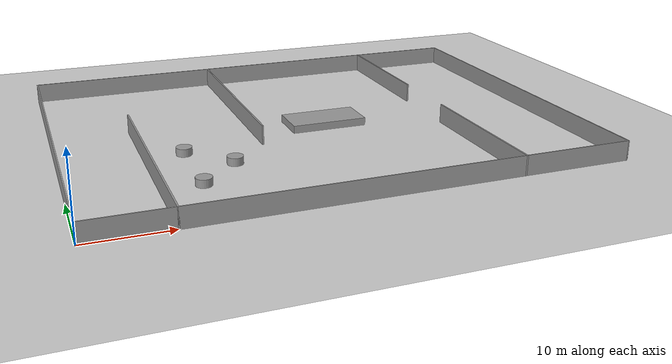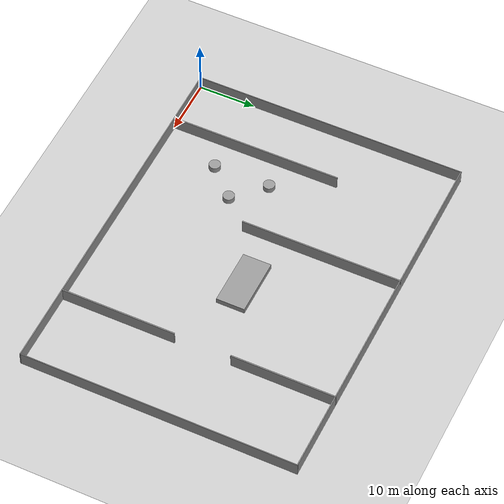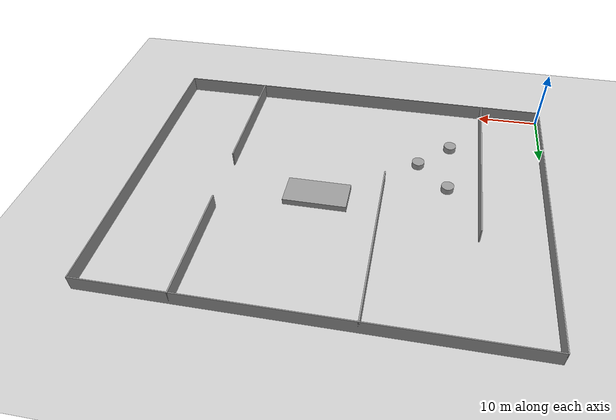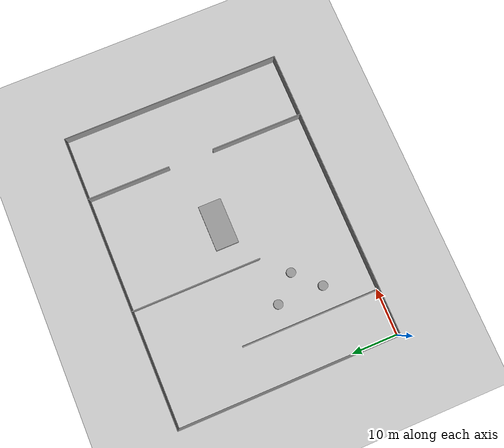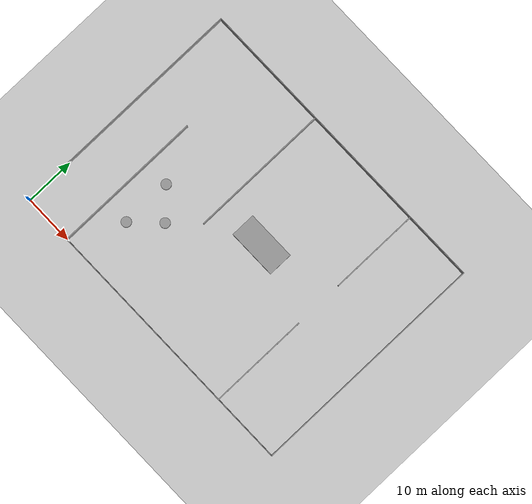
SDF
<sdf version="1.7">
 <world name="default">
  <light name="sun" type="directional">
   <pose>0 0 10 0 -0 0</pose>
   <diffuse>0.8 0.8 0.8 1</diffuse>
   <specular>0.2 0.2 0.2 1</specular>
   <attenuation>
    <range>1000</range>
    <constant>0.9</constant>
    <linear>0.01</linear>
    <quadratic>0.001</quadratic>
   </attenuation>
   <direction>-0.5 0.1 -0.9</direction>
   <spot><inner_angle>0</inner_angle><outer_angle>0</outer_angle><falloff>0</falloff></spot>
  </light>
  <model name="ground_plane">
   <static>1</static>
   <link name="link">
    <collision name="collision">
     <geometry><plane><normal>0 0 1</normal><size>100 100</size></plane></geometry>
     <surface>
      <contact><collide_bitmask>65535</collide_bitmask></contact>
      <friction><ode><mu>100</mu><mu2>50</mu2></ode></friction>
     </surface>
    </collision>
    <visual name="visual">
     <cast_shadows>0</cast_shadows>
     <geometry><plane><normal>0 0 1</normal><size>100 100</size></plane></geometry>
     <material>
      <script><uri>file://media/materials/scripts/gazebo.material</uri><name>Gazebo/Grey</name></script>
     </material>
    </visual>
   </link>
  </model>
  <gravity>0 0 -9.8</gravity>
  <magnetic_field>6e-06 2.3e-05 -4.2e-05</magnetic_field>
  <atmosphere type="adiabatic"/>
  <physics type="ode">
   <max_step_size>0.001</max_step_size>
   <real_time_factor>1</real_time_factor>
   <real_time_update_rate>1000</real_time_update_rate>
  </physics>
  <scene><ambient>0.4 0.4 0.4 1</ambient><background>0.7 0.7 0.7 1</background><shadows>1</shadows></scene>
  <spherical_coordinates>
   <surface_model>EARTH_WGS84</surface_model>
   <latitude_deg>0</latitude_deg>
   <longitude_deg>0</longitude_deg>
   <elevation>0</elevation>
   <heading_deg>0</heading_deg>
  </spherical_coordinates>
  <model name="wall">
   <pose>32 24 0 0 -0 0</pose>
   <link name="Wall_0">
    <collision name="Wall_0_Collision">
     <geometry><box><size>48.15 0.15 2.5</size></box></geometry>
     <pose>0 0 1.25 0 -0 0</pose>
    </collision>
    <visual name="Wall_0_Visual">
     <pose>0 0 1.25 0 -0 0</pose>
     <geometry><box><size>48.15 0.15 2.5</size></box></geometry>
     <material>
      <script><uri>file://media/materials/scripts/gazebo.material</uri><name>Gazebo/Grey</name></script>
      <ambient>1 1 1 1</ambient>
     </material>
     <meta><layer>0</layer></meta>
    </visual>
    <pose>-32 0 0 0 -0 1.5708</pose>
   </link>
   <link name="Wall_2">
    <collision name="Wall_2_Collision">
     <geometry><box><size>64.15 0.15 2.5</size></box></geometry>
     <pose>0 0 1.25 0 -0 0</pose>
    </collision>
    <visual name="Wall_2_Visual">
     <pose>0 0 1.25 0 -0 0</pose>
     <geometry><box><size>64.15 0.15 2.5</size></box></geometry>
     <material>
      <script><uri>file://media/materials/scripts/gazebo.material</uri><name>Gazebo/Grey</name></script>
      <ambient>1 1 1 1</ambient>
     </material>
     <meta><layer>0</layer></meta>
    </visual>
    <pose>-1e-06 24 0 0 -0 0</pose>
   </link>
   <link name="Wall_4">
    <collision name="Wall_4_Collision">
     <geometry><box><size>64.15 0.15 2.5</size></box></geometry>
     <pose>0 0 1.25 0 -0 0</pose>
    </collision>
    <visual name="Wall_4_Visual">
     <pose>0 0 1.25 0 -0 0</pose>
     <geometry><box><size>64.15 0.15 2.5</size></box></geometry>
     <material>
      <script><uri>file://media/materials/scripts/gazebo.material</uri><name>Gazebo/Grey</name></script>
      <ambient>1 1 1 1</ambient>
     </material>
     <meta><layer>0</layer></meta>
    </visual>
    <pose>-1e-06 -24 0 0 -0 0</pose>
   </link>
   <link name="Wall_6">
    <collision name="Wall_6_Collision">
     <geometry><box><size>48.15 0.15 2.5</size></box></geometry>
     <pose>0 0 1.25 0 -0 0</pose>
    </collision>
    <visual name="Wall_6_Visual">
     <pose>0 0 1.25 0 -0 0</pose>
     <geometry><box><size>48.15 0.15 2.5</size></box></geometry>
     <material>
      <script><uri>file://media/materials/scripts/gazebo.material</uri><name>Gazebo/Grey</name></script>
      <ambient>1 1 1 1</ambient>
     </material>
     <meta><layer>0</layer></meta>
    </visual>
    <pose>32 0 0 0 -0 -1.5708</pose>
   </link>
   <static>1</static>
  </model>
  <model name="wall_0">
   <pose>25.0375 24 0 0 -0 0</pose>
   <link name="Wall_10">
    <collision name="Wall_10_Collision">
     <geometry><box><size>28.15 0.20 2.5</size></box></geometry>
     <pose>0 0 1.25 0 -0 0</pose>
    </collision>
    <visual name="Wall_10_Visual">
     <pose>0 0 1.25 0 -0 0</pose>
     <geometry><box><size>28.15 0.20 2.5</size></box></geometry>
     <material>
      <script><uri>file://media/materials/scripts/gazebo.material</uri><name>Gazebo/Grey</name></script>
      <ambient>1 1 1 1</ambient>
     </material>
     <meta><layer>0</layer></meta>
    </visual>
    <pose>-0.0375 10 0 0 -0 1.5708</pose>
   </link>
   <link name="Wall_12">
    <collision name="Wall_12_Collision">
     <geometry><box><size>20.15 0.20 2.5</size></box></geometry>
     <pose>0 0 1.25 0 -0 0</pose>
    </collision>
    <visual name="Wall_12_Visual">
     <pose>0 0 1.25 0 -0 0</pose>
     <geometry><box><size>20.15 0.20 2.5</size></box></geometry>
     <material>
      <script><uri>file://media/materials/scripts/gazebo.material</uri><name>Gazebo/Grey</name></script>
      <ambient>1 1 1 1</ambient>
     </material>
     <meta><layer>0</layer></meta>
    </visual>
    <pose>24.9625 -14 0 0 -0 1.5708</pose>
   </link>
   <link name="Wall_14">
    <collision name="Wall_14_Collision">
     <geometry><box><size>18.15 0.20 2.5</size></box></geometry>
     <pose>0 0 1.25 0 -0 0</pose>
    </collision>
    <visual name="Wall_14_Visual">
     <pose>0 0 1.25 0 -0 0</pose>
     <geometry><box><size>18.15 0.20 2.5</size></box></geometry>
     <material>
      <script><uri>file://media/materials/scripts/gazebo.material</uri><name>Gazebo/Grey</name></script>
      <ambient>1 1 1 1</ambient>
     </material>
     <meta><layer>0</layer></meta>
    </visual>
    <pose>24.9625 15 0 0 -0 1.5708</pose>
   </link>
   <link name="Wall_8">
    <collision name="Wall_8_Collision">
     <geometry><box><size>30.15 0.20 2.5</size></box></geometry>
     <pose>0 0 1.25 0 -0 0</pose>
    </collision>
    <visual name="Wall_8_Visual">
     <pose>0 0 1.25 0 -0 0</pose>
     <geometry><box><size>30.15 0.20 2.5</size></box></geometry>
     <material>
      <script><uri>file://media/materials/scripts/gazebo.material</uri><name>Gazebo/Grey</name></script>
      <ambient>1 1 1 1</ambient>
     </material>
     <meta><layer>0</layer></meta>
    </visual>
    <pose>-15.0375 -9 0 0 -0 1.5708</pose>
   </link>
   <static>1</static>
  </model>
  <model name="map">
   <link name="link_0">
    <inertial>
     <mass>1</mass>
     <inertia><ixx>0.145833</ixx><ixy>0</ixy><ixz>0</ixz><iyy>0.145833</iyy><iyz>0</iyz><izz>0.125</izz></inertia>
    </inertial>
    <pose>15 10 0.5 0 -0 0</pose>
    <visual name="visual">
     <geometry><cylinder><radius>1</radius><length>1</length></cylinder></geometry>
     <material>
      <lighting>1</lighting>
      <script><uri>file://media/materials/scripts/gazebo.material</uri><name>Gazebo/Grey</name></script>
      <shader type="pixel"><normal_map>__default__</normal_map></shader>
      <ambient>0.3 0.3 0.3 1</ambient>
      <diffuse>0.7 0.7 0.7 1</diffuse>
      <specular>0.01 0.01 0.01 1</specular>
      <emissive>0 0 0 1</emissive>
     </material>
    </visual>
    <collision name="collision">
     <geometry><cylinder><radius>0.5</radius><length>1</length></cylinder></geometry>
     <surface>
      <friction>
       <ode><mu>1</mu><mu2>1</mu2><fdir1>0 0 0</fdir1><slip1>0</slip1><slip2>0</slip2></ode>
       <torsional>
        <coefficient>1</coefficient>
        <patch_radius>0</patch_radius>
        <surface_radius>0</surface_radius>
        <use_patch_radius>1</use_patch_radius>
        <ode><slip>0</slip></ode>
       </torsional>
      </friction>
      <bounce><restitution_coefficient>0</restitution_coefficient><threshold>1e+06</threshold></bounce>
      <contact>
       <collide_without_contact>0</collide_without_contact>
       <collide_without_contact_bitmask>1</collide_without_contact_bitmask>
       <collide_bitmask>1</collide_bitmask>
       <ode>
        <soft_cfm>0</soft_cfm>
        <soft_erp>0.2</soft_erp>
        <kp>1e+13</kp>
        <kd>1</kd>
        <max_vel>0.01</max_vel>
        <min_depth>0</min_depth>
       </ode>
       <bullet>
        <split_impulse>1</split_impulse>
        <split_impulse_penetration_threshold>-0.01</split_impulse_penetration_threshold>
        <soft_cfm>0</soft_cfm>
        <soft_erp>0.2</soft_erp>
        <kp>1e+13</kp>
        <kd>1</kd>
       </bullet>
      </contact>
     </surface>
    </collision>
   </link>
   <link name="link_0_clone">
    <inertial>
     <mass>1</mass>
     <inertia><ixx>0.145833</ixx><ixy>0</ixy><ixz>0</ixz><iyy>0.145833</iyy><iyz>0</iyz><izz>0.125</izz></inertia>
    </inertial>
    <pose>20 15 0.5 0 -0 0</pose>
    <visual name="visual">
     <geometry><cylinder><radius>1</radius><length>1</length></cylinder></geometry>
     <material>
      <lighting>1</lighting>
      <script><uri>file://media/materials/scripts/gazebo.material</uri><name>Gazebo/Grey</name></script>
      <shader type="pixel"><normal_map>__default__</normal_map></shader>
      <ambient>0.3 0.3 0.3 1</ambient>
      <diffuse>0.7 0.7 0.7 1</diffuse>
      <specular>0.01 0.01 0.01 1</specular>
      <emissive>0 0 0 1</emissive>
     </material>
    </visual>
    <collision name="collision">
     <geometry><cylinder><radius>0.5</radius><length>1</length></cylinder></geometry>
     <surface>
      <friction>
       <ode><mu>1</mu><mu2>1</mu2><fdir1>0 0 0</fdir1><slip1>0</slip1><slip2>0</slip2></ode>
       <torsional>
        <coefficient>1</coefficient>
        <patch_radius>0</patch_radius>
        <surface_radius>0</surface_radius>
        <use_patch_radius>1</use_patch_radius>
        <ode><slip>0</slip></ode>
       </torsional>
      </friction>
      <bounce><restitution_coefficient>0</restitution_coefficient><threshold>1e+06</threshold></bounce>
      <contact>
       <collide_without_contact>0</collide_without_contact>
       <collide_without_contact_bitmask>1</collide_without_contact_bitmask>
       <collide_bitmask>1</collide_bitmask>
       <ode>
        <soft_cfm>0</soft_cfm>
        <soft_erp>0.2</soft_erp>
        <kp>1e+13</kp>
        <kd>1</kd>
        <max_vel>0.01</max_vel>
        <min_depth>0</min_depth>
       </ode>
       <bullet>
        <split_impulse>1</split_impulse>
        <split_impulse_penetration_threshold>-0.01</split_impulse_penetration_threshold>
        <soft_cfm>0</soft_cfm>
        <soft_erp>0.2</soft_erp>
        <kp>1e+13</kp>
        <kd>1</kd>
       </bullet>
      </contact>
     </surface>
    </collision>
   </link>
   <link name="link_0_clone_0">
    <inertial>
     <mass>1</mass>
     <inertia><ixx>0.145833</ixx><ixy>0</ixy><ixz>0</ixz><iyy>0.145833</iyy><iyz>0</iyz><izz>0.125</izz></inertia>
    </inertial>
    <pose>15 20 0.5 0 -0 0</pose>
    <visual name="visual">
     <geometry><cylinder><radius>1</radius><length>1</length></cylinder></geometry>
     <material>
      <lighting>1</lighting>
      <script><uri>file://media/materials/scripts/gazebo.material</uri><name>Gazebo/Grey</name></script>
      <shader type="pixel"><normal_map>__default__</normal_map></shader>
      <ambient>0.3 0.3 0.3 1</ambient>
      <diffuse>0.7 0.7 0.7 1</diffuse>
      <specular>0.01 0.01 0.01 1</specular>
      <emissive>0 0 0 1</emissive>
     </material>
    </visual>
    <collision name="collision">
     <geometry><cylinder><radius>0.5</radius><length>1</length></cylinder></geometry>
     <surface>
      <friction>
       <ode><mu>1</mu><mu2>1</mu2><fdir1>0 0 0</fdir1><slip1>0</slip1><slip2>0</slip2></ode>
       <torsional>
        <coefficient>1</coefficient>
        <patch_radius>0</patch_radius>
        <surface_radius>0</surface_radius>
        <use_patch_radius>1</use_patch_radius>
        <ode><slip>0</slip></ode>
       </torsional>
      </friction>
      <bounce><restitution_coefficient>0</restitution_coefficient><threshold>1e+06</threshold></bounce>
      <contact>
       <collide_without_contact>0</collide_without_contact>
       <collide_without_contact_bitmask>1</collide_without_contact_bitmask>
       <collide_bitmask>1</collide_bitmask>
       <ode>
        <soft_cfm>0</soft_cfm>
        <soft_erp>0.2</soft_erp>
        <kp>1e+13</kp>
        <kd>1</kd>
        <max_vel>0.01</max_vel>
        <min_depth>0</min_depth>
       </ode>
       <bullet>
        <split_impulse>1</split_impulse>
        <split_impulse_penetration_threshold>-0.01</split_impulse_penetration_threshold>
        <soft_cfm>0</soft_cfm>
        <soft_erp>0.2</soft_erp>
        <kp>1e+13</kp>
        <kd>1</kd>
       </bullet>
      </contact>
     </surface>
    </collision>
   </link>
   <link name="link_1">
    <inertial>
     <mass>1</mass>
     <inertia>
      <ixx>0.166667</ixx>
      <ixy>0</ixy>
      <ixz>0</ixz>
      <iyy>0.166667</iyy>
      <iyz>0</iyz>
      <izz>0.166667</izz>
     </inertia>
    </inertial>
    <pose>35 25 0.5 0 -0 0</pose>
    <visual name="visual">
     <geometry><box><size>10 5 1</size></box></geometry>
     <material>
      <lighting>1</lighting>
      <script><uri>file://media/materials/scripts/gazebo.material</uri><name>Gazebo/Grey</name></script>
      <shader type="pixel"><normal_map>__default__</normal_map></shader>
      <ambient>0.3 0.3 0.3 1</ambient>
      <diffuse>0.7 0.7 0.7 1</diffuse>
      <specular>0.01 0.01 0.01 1</specular>
      <emissive>0 0 0 1</emissive>
     </material>
    </visual>
    <collision name="collision">
     <geometry><box><size>1 1 1</size></box></geometry>
     <surface>
      <friction>
       <ode><mu>1</mu><mu2>1</mu2><fdir1>0 0 0</fdir1><slip1>0</slip1><slip2>0</slip2></ode>
       <torsional>
        <coefficient>1</coefficient>
        <patch_radius>0</patch_radius>
        <surface_radius>0</surface_radius>
        <use_patch_radius>1</use_patch_radius>
        <ode><slip>0</slip></ode>
       </torsional>
      </friction>
      <bounce><restitution_coefficient>0</restitution_coefficient><threshold>1e+06</threshold></bounce>
      <contact>
       <collide_without_contact>0</collide_without_contact>
       <collide_without_contact_bitmask>1</collide_without_contact_bitmask>
       <collide_bitmask>1</collide_bitmask>
       <ode>
        <soft_cfm>0</soft_cfm>
        <soft_erp>0.2</soft_erp>
        <kp>1e+13</kp>
        <kd>1</kd>
        <max_vel>0.01</max_vel>
        <min_depth>0</min_depth>
       </ode>
       <bullet>
        <split_impulse>1</split_impulse>
        <split_impulse_penetration_threshold>-0.01</split_impulse_penetration_threshold>
        <soft_cfm>0</soft_cfm>
        <soft_erp>0.2</soft_erp>
        <kp>1e+13</kp>
        <kd>1</kd>
       </bullet>
      </contact>
     </surface>
    </collision>
   </link>
   <static>0</static>
  </model>
 </world>
</sdf>
